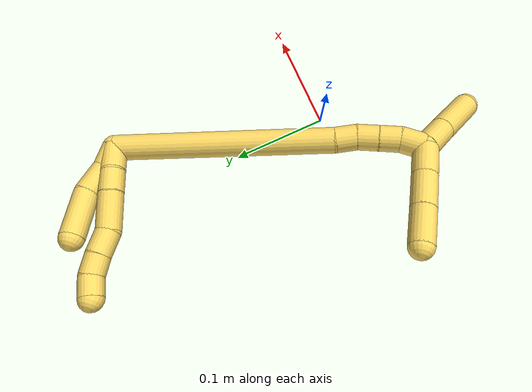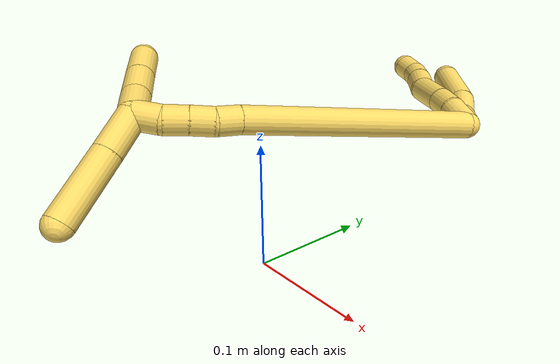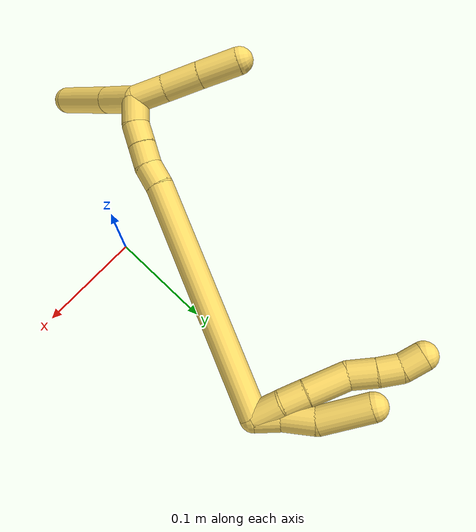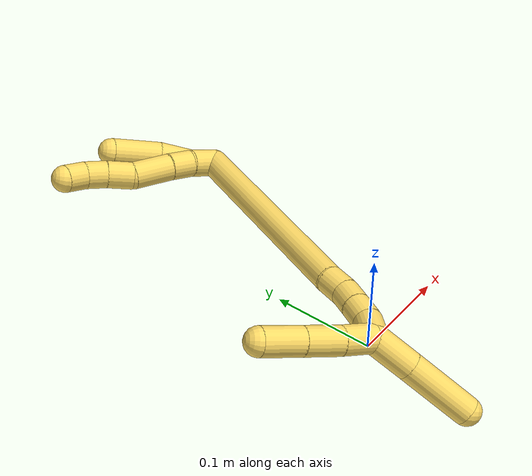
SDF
<sdf version="1.7">
 <world name="default">
  <model name="5">
   <static>0</static>
   <link name="5">
    <collision name="collision-cylinder-e_1_2_8">
     <pose>-0.002545 -0.002057 -0.012961 2.98419 -0.191588 -1.76705</pose>
     <geometry><cylinder><radius>0.0125</radius><length>0.026735</length></cylinder></geometry>
     <surface>
      <friction><ode><mu>1.16</mu><mu2>1.16</mu2><slip1>0</slip1><slip2>0</slip2></ode></friction>
      <contact><ode><kp>1e+06</kp><kd>1</kd><max_vel>0</max_vel><min_depth>0.001</min_depth></ode></contact>
     </surface>
    </collision>
    <visual name="visual-cylinder-e_1_2_8">
     <pose>-0.002545 -0.002057 -0.012961 2.98419 -0.191588 -1.76705</pose>
     <geometry><cylinder><radius>0.0125</radius><length>0.026735</length></cylinder></geometry>
     <material><ambient>1 0.858824 0.4 1</ambient></material>
    </visual>
    <collision name="collision-cylinder-e_2_8_9">
     <pose>-0.005736 -0.007066 -0.036379 2.86645 -0.059331 -0.422286</pose>
     <geometry><cylinder><radius>0.0125</radius><length>0.021771</length></cylinder></geometry>
     <surface>
      <friction><ode><mu>1.16</mu><mu2>1.16</mu2><slip1>0</slip1><slip2>0</slip2></ode></friction>
      <contact><ode><kp>1e+06</kp><kd>1</kd><max_vel>0</max_vel><min_depth>0.001</min_depth></ode></contact>
     </surface>
    </collision>
    <visual name="visual-cylinder-e_2_8_9">
     <pose>-0.005736 -0.007066 -0.036379 2.86645 -0.059331 -0.422286</pose>
     <geometry><cylinder><radius>0.0125</radius><length>0.021771</length></cylinder></geometry>
     <material><ambient>1 0.858824 0.4 1</ambient></material>
    </visual>
    <collision name="collision-cylinder-e_3_9_10">
     <pose>-0.006531 -0.016029 -0.064408 2.81203 -0.008026 -0.048256</pose>
     <geometry><cylinder><radius>0.0125</radius><length>0.037142</length></cylinder></geometry>
     <surface>
      <friction><ode><mu>1.16</mu><mu2>1.16</mu2><slip1>0</slip1><slip2>0</slip2></ode></friction>
      <contact><ode><kp>1e+06</kp><kd>1</kd><max_vel>0</max_vel><min_depth>0.001</min_depth></ode></contact>
     </surface>
    </collision>
    <visual name="visual-cylinder-e_3_9_10">
     <pose>-0.006531 -0.016029 -0.064408 2.81203 -0.008026 -0.048256</pose>
     <geometry><cylinder><radius>0.0125</radius><length>0.037142</length></cylinder></geometry>
     <material><ambient>1 0.858824 0.4 1</ambient></material>
    </visual>
    <collision name="collision-cylinder-e_4_10_11">
     <pose>-0.004852 -0.022424 -0.093918 3.10929 0.151855 2.7232</pose>
     <geometry><cylinder><radius>0.0125</radius><length>0.024169</length></cylinder></geometry>
     <surface>
      <friction><ode><mu>1.16</mu><mu2>1.16</mu2><slip1>0</slip1><slip2>0</slip2></ode></friction>
      <contact><ode><kp>1e+06</kp><kd>1</kd><max_vel>0</max_vel><min_depth>0.001</min_depth></ode></contact>
     </surface>
    </collision>
    <visual name="visual-cylinder-e_4_10_11">
     <pose>-0.004852 -0.022424 -0.093918 3.10929 0.151855 2.7232</pose>
     <geometry><cylinder><radius>0.0125</radius><length>0.024169</length></cylinder></geometry>
     <material><ambient>1 0.858824 0.4 1</ambient></material>
    </visual>
    <collision name="collision-cylinder-e_5_11_12">
     <pose>-0.001755 -0.024178 -0.115688 3.00335 0.127133 1.4869</pose>
     <geometry><cylinder><radius>0.0125</radius><length>0.020012</length></cylinder></geometry>
     <surface>
      <friction><ode><mu>1.16</mu><mu2>1.16</mu2><slip1>0</slip1><slip2>0</slip2></ode></friction>
      <contact><ode><kp>1e+06</kp><kd>1</kd><max_vel>0</max_vel><min_depth>0.001</min_depth></ode></contact>
     </surface>
    </collision>
    <visual name="visual-cylinder-e_5_11_12">
     <pose>-0.001755 -0.024178 -0.115688 3.00335 0.127133 1.4869</pose>
     <geometry><cylinder><radius>0.0125</radius><length>0.020012</length></cylinder></geometry>
     <material><ambient>1 0.858824 0.4 1</ambient></material>
    </visual>
    <collision name="collision-cylinder-e_6_12_6">
     <pose>-0.002194 -0.028372 -0.135048 2.85322 -0.170128 -1.06204</pose>
     <geometry><cylinder><radius>0.0125</radius><length>0.020171</length></cylinder></geometry>
     <surface>
      <friction><ode><mu>1.16</mu><mu2>1.16</mu2><slip1>0</slip1><slip2>0</slip2></ode></friction>
      <contact><ode><kp>1e+06</kp><kd>1</kd><max_vel>0</max_vel><min_depth>0.001</min_depth></ode></contact>
     </surface>
    </collision>
    <visual name="visual-cylinder-e_6_12_6">
     <pose>-0.002194 -0.028372 -0.135048 2.85322 -0.170128 -1.06204</pose>
     <geometry><cylinder><radius>0.0125</radius><length>0.020171</length></cylinder></geometry>
     <material><ambient>1 0.858824 0.4 1</ambient></material>
    </visual>
    <collision name="collision-cylinder-e_1_2_13">
     <pose>0.002889 -0.000911 -0.01117 3.06025 0.252295 2.52059</pose>
     <geometry><cylinder><radius>0.0125</radius><length>0.023147</length></cylinder></geometry>
     <surface>
      <friction><ode><mu>1.16</mu><mu2>1.16</mu2><slip1>0</slip1><slip2>0</slip2></ode></friction>
      <contact><ode><kp>1e+06</kp><kd>1</kd><max_vel>0</max_vel><min_depth>0.001</min_depth></ode></contact>
     </surface>
    </collision>
    <visual name="visual-cylinder-e_1_2_13">
     <pose>0.002889 -0.000911 -0.01117 3.06025 0.252295 2.52059</pose>
     <geometry><cylinder><radius>0.0125</radius><length>0.023147</length></cylinder></geometry>
     <material><ambient>1 0.858824 0.4 1</ambient></material>
    </visual>
    <collision name="collision-cylinder-e_2_13_14">
     <pose>0.009393 0.000545 -0.036643 -2.97762 0.244361 -1.96208</pose>
     <geometry><cylinder><radius>0.0125</radius><length>0.029882</length></cylinder></geometry>
     <surface>
      <friction><ode><mu>1.16</mu><mu2>1.16</mu2><slip1>0</slip1><slip2>0</slip2></ode></friction>
      <contact><ode><kp>1e+06</kp><kd>1</kd><max_vel>0</max_vel><min_depth>0.001</min_depth></ode></contact>
     </surface>
    </collision>
    <visual name="visual-cylinder-e_2_13_14">
     <pose>0.009393 0.000545 -0.036643 -2.97762 0.244361 -1.96208</pose>
     <geometry><cylinder><radius>0.0125</radius><length>0.029882</length></cylinder></geometry>
     <material><ambient>1 0.858824 0.4 1</ambient></material>
    </visual>
    <collision name="collision-cylinder-e_3_14_5">
     <pose>0.012197 0.001847 -0.074393 3.09621 -0.034536 -1.30096</pose>
     <geometry><cylinder><radius>0.0125</radius><length>0.04697</length></cylinder></geometry>
     <surface>
      <friction><ode><mu>1.16</mu><mu2>1.16</mu2><slip1>0</slip1><slip2>0</slip2></ode></friction>
      <contact><ode><kp>1e+06</kp><kd>1</kd><max_vel>0</max_vel><min_depth>0.001</min_depth></ode></contact>
     </surface>
    </collision>
    <visual name="visual-cylinder-e_3_14_5">
     <pose>0.012197 0.001847 -0.074393 3.09621 -0.034536 -1.30096</pose>
     <geometry><cylinder><radius>0.0125</radius><length>0.04697</length></cylinder></geometry>
     <material><ambient>1 0.858824 0.4 1</ambient></material>
    </visual>
    <collision name="collision-cylinder-e_1_2_15">
     <pose>-0.088368 -0.057511 0.019217 1.24832 -0.9694 -0.725002</pose>
     <geometry><cylinder><radius>0.0125</radius><length>0.214343</length></cylinder></geometry>
     <surface>
      <friction><ode><mu>1.16</mu><mu2>1.16</mu2><slip1>0</slip1><slip2>0</slip2></ode></friction>
      <contact><ode><kp>1e+06</kp><kd>1</kd><max_vel>0</max_vel><min_depth>0.001</min_depth></ode></contact>
     </surface>
    </collision>
    <visual name="visual-cylinder-e_1_2_15">
     <pose>-0.088368 -0.057511 0.019217 1.24832 -0.9694 -0.725002</pose>
     <geometry><cylinder><radius>0.0125</radius><length>0.214343</length></cylinder></geometry>
     <material><ambient>1 0.858824 0.4 1</ambient></material>
    </visual>
    <collision name="collision-cylinder-e_2_15_16">
     <pose>-0.185034 -0.12056 0.041723 1.03479 -0.910775 -0.54361</pose>
     <geometry><cylinder><radius>0.0125</radius><length>0.021009</length></cylinder></geometry>
     <surface>
      <friction><ode><mu>1.16</mu><mu2>1.16</mu2><slip1>0</slip1><slip2>0</slip2></ode></friction>
      <contact><ode><kp>1e+06</kp><kd>1</kd><max_vel>0</max_vel><min_depth>0.001</min_depth></ode></contact>
     </surface>
    </collision>
    <visual name="visual-cylinder-e_2_15_16">
     <pose>-0.185034 -0.12056 0.041723 1.03479 -0.910775 -0.54361</pose>
     <geometry><cylinder><radius>0.0125</radius><length>0.021009</length></cylinder></geometry>
     <material><ambient>1 0.858824 0.4 1</ambient></material>
    </visual>
    <collision name="collision-cylinder-e_3_16_17">
     <pose>-0.20169 -0.131902 0.045965 1.40816 -0.957478 -0.830337</pose>
     <geometry><cylinder><radius>0.0125</radius><length>0.020439</length></cylinder></geometry>
     <surface>
      <friction><ode><mu>1.16</mu><mu2>1.16</mu2><slip1>0</slip1><slip2>0</slip2></ode></friction>
      <contact><ode><kp>1e+06</kp><kd>1</kd><max_vel>0</max_vel><min_depth>0.001</min_depth></ode></contact>
     </surface>
    </collision>
    <visual name="visual-cylinder-e_3_16_17">
     <pose>-0.20169 -0.131902 0.045965 1.40816 -0.957478 -0.830337</pose>
     <geometry><cylinder><radius>0.0125</radius><length>0.020439</length></cylinder></geometry>
     <material><ambient>1 0.858824 0.4 1</ambient></material>
    </visual>
    <collision name="collision-cylinder-e_4_17_18">
     <pose>-0.218281 -0.143805 0.048028 1.39068 -0.925556 -0.788906</pose>
     <geometry><cylinder><radius>0.0125</radius><length>0.020613</length></cylinder></geometry>
     <surface>
      <friction><ode><mu>1.16</mu><mu2>1.16</mu2><slip1>0</slip1><slip2>0</slip2></ode></friction>
      <contact><ode><kp>1e+06</kp><kd>1</kd><max_vel>0</max_vel><min_depth>0.001</min_depth></ode></contact>
     </surface>
    </collision>
    <visual name="visual-cylinder-e_4_17_18">
     <pose>-0.218281 -0.143805 0.048028 1.39068 -0.925556 -0.788906</pose>
     <geometry><cylinder><radius>0.0125</radius><length>0.020613</length></cylinder></geometry>
     <material><ambient>1 0.858824 0.4 1</ambient></material>
    </visual>
    <collision name="collision-cylinder-e_5_18_1">
     <pose>-0.23585 -0.156839 0.047149 1.8501 -0.912702 -1.15486</pose>
     <geometry><cylinder><radius>0.0125</radius><length>0.023595</length></cylinder></geometry>
     <surface>
      <friction><ode><mu>1.16</mu><mu2>1.16</mu2><slip1>0</slip1><slip2>0</slip2></ode></friction>
      <contact><ode><kp>1e+06</kp><kd>1</kd><max_vel>0</max_vel><min_depth>0.001</min_depth></ode></contact>
     </surface>
    </collision>
    <visual name="visual-cylinder-e_5_18_1">
     <pose>-0.23585 -0.156839 0.047149 1.8501 -0.912702 -1.15486</pose>
     <geometry><cylinder><radius>0.0125</radius><length>0.023595</length></cylinder></geometry>
     <material><ambient>1 0.858824 0.4 1</ambient></material>
    </visual>
    <collision name="collision-cylinder-e_1_1_19">
     <pose>-0.245351 -0.165586 0.030596 3.01784 -0.011437 -0.184084</pose>
     <geometry><cylinder><radius>0.0125</radius><length>0.029353</length></cylinder></geometry>
     <surface>
      <friction><ode><mu>1.16</mu><mu2>1.16</mu2><slip1>0</slip1><slip2>0</slip2></ode></friction>
      <contact><ode><kp>1e+06</kp><kd>1</kd><max_vel>0</max_vel><min_depth>0.001</min_depth></ode></contact>
     </surface>
    </collision>
    <visual name="visual-cylinder-e_1_1_19">
     <pose>-0.245351 -0.165586 0.030596 3.01784 -0.011437 -0.184084</pose>
     <geometry><cylinder><radius>0.0125</radius><length>0.029353</length></cylinder></geometry>
     <material><ambient>1 0.858824 0.4 1</ambient></material>
    </visual>
    <collision name="collision-cylinder-e_2_19_20">
     <pose>-0.246047 -0.168587 -0.000877 3.07138 -0.031132 -0.834411</pose>
     <geometry><cylinder><radius>0.0125</radius><length>0.033919</length></cylinder></geometry>
     <surface>
      <friction><ode><mu>1.16</mu><mu2>1.16</mu2><slip1>0</slip1><slip2>0</slip2></ode></friction>
      <contact><ode><kp>1e+06</kp><kd>1</kd><max_vel>0</max_vel><min_depth>0.001</min_depth></ode></contact>
     </surface>
    </collision>
    <visual name="visual-cylinder-e_2_19_20">
     <pose>-0.246047 -0.168587 -0.000877 3.07138 -0.031132 -0.834411</pose>
     <geometry><cylinder><radius>0.0125</radius><length>0.033919</length></cylinder></geometry>
     <material><ambient>1 0.858824 0.4 1</ambient></material>
    </visual>
    <collision name="collision-cylinder-e_3_20_4">
     <pose>-0.246924 -0.170998 -0.036106 3.075 -0.019016 -0.556131</pose>
     <geometry><cylinder><radius>0.0125</radius><length>0.036728</length></cylinder></geometry>
     <surface>
      <friction><ode><mu>1.16</mu><mu2>1.16</mu2><slip1>0</slip1><slip2>0</slip2></ode></friction>
      <contact><ode><kp>1e+06</kp><kd>1</kd><max_vel>0</max_vel><min_depth>0.001</min_depth></ode></contact>
     </surface>
    </collision>
    <visual name="visual-cylinder-e_3_20_4">
     <pose>-0.246924 -0.170998 -0.036106 3.075 -0.019016 -0.556131</pose>
     <geometry><cylinder><radius>0.0125</radius><length>0.036728</length></cylinder></geometry>
     <material><ambient>1 0.858824 0.4 1</ambient></material>
    </visual>
    <collision name="collision-cylinder-e_1_1_21">
     <pose>-0.2464 -0.173821 0.061081 0.562898 -0.064528 -0.018663</pose>
     <geometry><cylinder><radius>0.0125</radius><length>0.03773</length></cylinder></geometry>
     <surface>
      <friction><ode><mu>1.16</mu><mu2>1.16</mu2><slip1>0</slip1><slip2>0</slip2></ode></friction>
      <contact><ode><kp>1e+06</kp><kd>1</kd><max_vel>0</max_vel><min_depth>0.001</min_depth></ode></contact>
     </surface>
    </collision>
    <visual name="visual-cylinder-e_1_1_21">
     <pose>-0.2464 -0.173821 0.061081 0.562898 -0.064528 -0.018663</pose>
     <geometry><cylinder><radius>0.0125</radius><length>0.03773</length></cylinder></geometry>
     <material><ambient>1 0.858824 0.4 1</ambient></material>
    </visual>
    <collision name="collision-cylinder-e_2_21_3">
     <pose>-0.249957 -0.200677 0.103105 0.572131 -0.075255 -0.022145</pose>
     <geometry><cylinder><radius>0.0125</radius><length>0.06227</length></cylinder></geometry>
     <surface>
      <friction><ode><mu>1.16</mu><mu2>1.16</mu2><slip1>0</slip1><slip2>0</slip2></ode></friction>
      <contact><ode><kp>1e+06</kp><kd>1</kd><max_vel>0</max_vel><min_depth>0.001</min_depth></ode></contact>
     </surface>
    </collision>
    <visual name="visual-cylinder-e_2_21_3">
     <pose>-0.249957 -0.200677 0.103105 0.572131 -0.075255 -0.022145</pose>
     <geometry><cylinder><radius>0.0125</radius><length>0.06227</length></cylinder></geometry>
     <material><ambient>1 0.858824 0.4 1</ambient></material>
    </visual>
    <collision name="collision-sphere-3">
     <pose>-0.252298 -0.217486 0.129207 0 -0 0</pose>
     <geometry><sphere><radius>0.0125</radius></sphere></geometry>
     <surface>
      <friction><ode><mu>1.16</mu><mu2>1.16</mu2><slip1>0</slip1><slip2>0</slip2></ode></friction>
      <contact><ode><kp>1e+06</kp><kd>1</kd><max_vel>0</max_vel><min_depth>0.001</min_depth></ode></contact>
     </surface>
    </collision>
    <visual name="visual-sphere-3">
     <pose>-0.252298 -0.217486 0.129207 0 -0 0</pose>
     <geometry><sphere><radius>0.0125</radius></sphere></geometry>
     <material><ambient>1 0.858824 0.4 1</ambient></material>
    </visual>
    <collision name="collision-sphere-21">
     <pose>-0.247616 -0.183867 0.077002 0 -0 0</pose>
     <geometry><sphere><radius>0.0125</radius></sphere></geometry>
     <surface>
      <friction><ode><mu>1.16</mu><mu2>1.16</mu2><slip1>0</slip1><slip2>0</slip2></ode></friction>
      <contact><ode><kp>1e+06</kp><kd>1</kd><max_vel>0</max_vel><min_depth>0.001</min_depth></ode></contact>
     </surface>
    </collision>
    <visual name="visual-sphere-21">
     <pose>-0.247616 -0.183867 0.077002 0 -0 0</pose>
     <geometry><sphere><radius>0.0125</radius></sphere></geometry>
     <material><ambient>1 0.858824 0.4 1</ambient></material>
    </visual>
    <collision name="collision-sphere-4">
     <pose>-0.247273 -0.17222 -0.054426 0 -0 0</pose>
     <geometry><sphere><radius>0.0125</radius></sphere></geometry>
     <surface>
      <friction><ode><mu>1.16</mu><mu2>1.16</mu2><slip1>0</slip1><slip2>0</slip2></ode></friction>
      <contact><ode><kp>1e+06</kp><kd>1</kd><max_vel>0</max_vel><min_depth>0.001</min_depth></ode></contact>
     </surface>
    </collision>
    <visual name="visual-sphere-4">
     <pose>-0.247273 -0.17222 -0.054426 0 -0 0</pose>
     <geometry><sphere><radius>0.0125</radius></sphere></geometry>
     <material><ambient>1 0.858824 0.4 1</ambient></material>
    </visual>
    <collision name="collision-sphere-20">
     <pose>-0.246575 -0.169776 -0.017786 0 -0 0</pose>
     <geometry><sphere><radius>0.0125</radius></sphere></geometry>
     <surface>
      <friction><ode><mu>1.16</mu><mu2>1.16</mu2><slip1>0</slip1><slip2>0</slip2></ode></friction>
      <contact><ode><kp>1e+06</kp><kd>1</kd><max_vel>0</max_vel><min_depth>0.001</min_depth></ode></contact>
     </surface>
    </collision>
    <visual name="visual-sphere-20">
     <pose>-0.246575 -0.169776 -0.017786 0 -0 0</pose>
     <geometry><sphere><radius>0.0125</radius></sphere></geometry>
     <material><ambient>1 0.858824 0.4 1</ambient></material>
    </visual>
    <collision name="collision-sphere-12">
     <pose>-0.000486 -0.025545 -0.125518 0 -0 0</pose>
     <geometry><sphere><radius>0.0125</radius></sphere></geometry>
     <surface>
      <friction><ode><mu>1.16</mu><mu2>1.16</mu2><slip1>0</slip1><slip2>0</slip2></ode></friction>
      <contact><ode><kp>1e+06</kp><kd>1</kd><max_vel>0</max_vel><min_depth>0.001</min_depth></ode></contact>
     </surface>
    </collision>
    <visual name="visual-sphere-12">
     <pose>-0.000486 -0.025545 -0.125518 0 -0 0</pose>
     <geometry><sphere><radius>0.0125</radius></sphere></geometry>
     <material><ambient>1 0.858824 0.4 1</ambient></material>
    </visual>
    <collision name="collision-sphere-11">
     <pose>-0.003024 -0.02281 -0.105857 0 -0 0</pose>
     <geometry><sphere><radius>0.0125</radius></sphere></geometry>
     <surface>
      <friction><ode><mu>1.16</mu><mu2>1.16</mu2><slip1>0</slip1><slip2>0</slip2></ode></friction>
      <contact><ode><kp>1e+06</kp><kd>1</kd><max_vel>0</max_vel><min_depth>0.001</min_depth></ode></contact>
     </surface>
    </collision>
    <visual name="visual-sphere-11">
     <pose>-0.003024 -0.02281 -0.105857 0 -0 0</pose>
     <geometry><sphere><radius>0.0125</radius></sphere></geometry>
     <material><ambient>1 0.858824 0.4 1</ambient></material>
    </visual>
    <collision name="collision-sphere-10">
     <pose>-0.00668 -0.022038 -0.081979 0 -0 0</pose>
     <geometry><sphere><radius>0.0125</radius></sphere></geometry>
     <surface>
      <friction><ode><mu>1.16</mu><mu2>1.16</mu2><slip1>0</slip1><slip2>0</slip2></ode></friction>
      <contact><ode><kp>1e+06</kp><kd>1</kd><max_vel>0</max_vel><min_depth>0.001</min_depth></ode></contact>
     </surface>
    </collision>
    <visual name="visual-sphere-10">
     <pose>-0.00668 -0.022038 -0.081979 0 -0 0</pose>
     <geometry><sphere><radius>0.0125</radius></sphere></geometry>
     <material><ambient>1 0.858824 0.4 1</ambient></material>
    </visual>
    <collision name="collision-sphere-9">
     <pose>-0.006382 -0.010019 -0.046837 0 -0 0</pose>
     <geometry><sphere><radius>0.0125</radius></sphere></geometry>
     <surface>
      <friction><ode><mu>1.16</mu><mu2>1.16</mu2><slip1>0</slip1><slip2>0</slip2></ode></friction>
      <contact><ode><kp>1e+06</kp><kd>1</kd><max_vel>0</max_vel><min_depth>0.001</min_depth></ode></contact>
     </surface>
    </collision>
    <visual name="visual-sphere-9">
     <pose>-0.006382 -0.010019 -0.046837 0 -0 0</pose>
     <geometry><sphere><radius>0.0125</radius></sphere></geometry>
     <material><ambient>1 0.858824 0.4 1</ambient></material>
    </visual>
    <collision name="collision-sphere-2">
     <geometry><sphere><radius>0.0125</radius></sphere></geometry>
     <surface>
      <friction><ode><mu>1.16</mu><mu2>1.16</mu2><slip1>0</slip1><slip2>0</slip2></ode></friction>
      <contact><ode><kp>1e+06</kp><kd>1</kd><max_vel>0</max_vel><min_depth>0.001</min_depth></ode></contact>
     </surface>
    </collision>
    <visual name="visual-sphere-2">
     <geometry><sphere><radius>0.0125</radius></sphere></geometry>
     <material><ambient>1 0.858824 0.4 1</ambient></material>
    </visual>
    <collision name="collision-sphere-19">
     <pose>-0.245519 -0.167398 0.016032 0 -0 0</pose>
     <geometry><sphere><radius>0.0125</radius></sphere></geometry>
     <surface>
      <friction><ode><mu>1.16</mu><mu2>1.16</mu2><slip1>0</slip1><slip2>0</slip2></ode></friction>
      <contact><ode><kp>1e+06</kp><kd>1</kd><max_vel>0</max_vel><min_depth>0.001</min_depth></ode></contact>
     </surface>
    </collision>
    <visual name="visual-sphere-19">
     <pose>-0.245519 -0.167398 0.016032 0 -0 0</pose>
     <geometry><sphere><radius>0.0125</radius></sphere></geometry>
     <material><ambient>1 0.858824 0.4 1</ambient></material>
    </visual>
    <collision name="collision-sphere-8">
     <pose>-0.005091 -0.004114 -0.025922 0 -0 0</pose>
     <geometry><sphere><radius>0.0125</radius></sphere></geometry>
     <surface>
      <friction><ode><mu>1.16</mu><mu2>1.16</mu2><slip1>0</slip1><slip2>0</slip2></ode></friction>
      <contact><ode><kp>1e+06</kp><kd>1</kd><max_vel>0</max_vel><min_depth>0.001</min_depth></ode></contact>
     </surface>
    </collision>
    <visual name="visual-sphere-8">
     <pose>-0.005091 -0.004114 -0.025922 0 -0 0</pose>
     <geometry><sphere><radius>0.0125</radius></sphere></geometry>
     <material><ambient>1 0.858824 0.4 1</ambient></material>
    </visual>
    <collision name="collision-sphere-6">
     <pose>-0.003902 -0.031199 -0.144577 0 -0 0</pose>
     <geometry><sphere><radius>0.0125</radius></sphere></geometry>
     <surface>
      <friction><ode><mu>1.16</mu><mu2>1.16</mu2><slip1>0</slip1><slip2>0</slip2></ode></friction>
      <contact><ode><kp>1e+06</kp><kd>1</kd><max_vel>0</max_vel><min_depth>0.001</min_depth></ode></contact>
     </surface>
    </collision>
    <visual name="visual-sphere-6">
     <pose>-0.003902 -0.031199 -0.144577 0 -0 0</pose>
     <geometry><sphere><radius>0.0125</radius></sphere></geometry>
     <material><ambient>1 0.858824 0.4 1</ambient></material>
    </visual>
    <collision name="collision-sphere-13">
     <pose>0.005778 -0.001821 -0.02234 0 -0 0</pose>
     <geometry><sphere><radius>0.0125</radius></sphere></geometry>
     <surface>
      <friction><ode><mu>1.16</mu><mu2>1.16</mu2><slip1>0</slip1><slip2>0</slip2></ode></friction>
      <contact><ode><kp>1e+06</kp><kd>1</kd><max_vel>0</max_vel><min_depth>0.001</min_depth></ode></contact>
     </surface>
    </collision>
    <visual name="visual-sphere-13">
     <pose>0.005778 -0.001821 -0.02234 0 -0 0</pose>
     <geometry><sphere><radius>0.0125</radius></sphere></geometry>
     <material><ambient>1 0.858824 0.4 1</ambient></material>
    </visual>
    <collision name="collision-sphere-14">
     <pose>0.013008 0.002912 -0.050946 0 -0 0</pose>
     <geometry><sphere><radius>0.0125</radius></sphere></geometry>
     <surface>
      <friction><ode><mu>1.16</mu><mu2>1.16</mu2><slip1>0</slip1><slip2>0</slip2></ode></friction>
      <contact><ode><kp>1e+06</kp><kd>1</kd><max_vel>0</max_vel><min_depth>0.001</min_depth></ode></contact>
     </surface>
    </collision>
    <visual name="visual-sphere-14">
     <pose>0.013008 0.002912 -0.050946 0 -0 0</pose>
     <geometry><sphere><radius>0.0125</radius></sphere></geometry>
     <material><ambient>1 0.858824 0.4 1</ambient></material>
    </visual>
    <collision name="collision-sphere-5">
     <pose>0.011386 0.000782 -0.09784 0 -0 0</pose>
     <geometry><sphere><radius>0.0125</radius></sphere></geometry>
     <surface>
      <friction><ode><mu>1.16</mu><mu2>1.16</mu2><slip1>0</slip1><slip2>0</slip2></ode></friction>
      <contact><ode><kp>1e+06</kp><kd>1</kd><max_vel>0</max_vel><min_depth>0.001</min_depth></ode></contact>
     </surface>
    </collision>
    <visual name="visual-sphere-5">
     <pose>0.011386 0.000782 -0.09784 0 -0 0</pose>
     <geometry><sphere><radius>0.0125</radius></sphere></geometry>
     <material><ambient>1 0.858824 0.4 1</ambient></material>
    </visual>
    <collision name="collision-sphere-15">
     <pose>-0.176736 -0.115023 0.038434 0 -0 0</pose>
     <geometry><sphere><radius>0.0125</radius></sphere></geometry>
     <surface>
      <friction><ode><mu>1.16</mu><mu2>1.16</mu2><slip1>0</slip1><slip2>0</slip2></ode></friction>
      <contact><ode><kp>1e+06</kp><kd>1</kd><max_vel>0</max_vel><min_depth>0.001</min_depth></ode></contact>
     </surface>
    </collision>
    <visual name="visual-sphere-15">
     <pose>-0.176736 -0.115023 0.038434 0 -0 0</pose>
     <geometry><sphere><radius>0.0125</radius></sphere></geometry>
     <material><ambient>1 0.858824 0.4 1</ambient></material>
    </visual>
    <collision name="collision-sphere-16">
     <pose>-0.193333 -0.126098 0.045012 0 -0 0</pose>
     <geometry><sphere><radius>0.0125</radius></sphere></geometry>
     <surface>
      <friction><ode><mu>1.16</mu><mu2>1.16</mu2><slip1>0</slip1><slip2>0</slip2></ode></friction>
      <contact><ode><kp>1e+06</kp><kd>1</kd><max_vel>0</max_vel><min_depth>0.001</min_depth></ode></contact>
     </surface>
    </collision>
    <visual name="visual-sphere-16">
     <pose>-0.193333 -0.126098 0.045012 0 -0 0</pose>
     <geometry><sphere><radius>0.0125</radius></sphere></geometry>
     <material><ambient>1 0.858824 0.4 1</ambient></material>
    </visual>
    <collision name="collision-sphere-17">
     <pose>-0.210047 -0.137707 0.046917 0 -0 0</pose>
     <geometry><sphere><radius>0.0125</radius></sphere></geometry>
     <surface>
      <friction><ode><mu>1.16</mu><mu2>1.16</mu2><slip1>0</slip1><slip2>0</slip2></ode></friction>
      <contact><ode><kp>1e+06</kp><kd>1</kd><max_vel>0</max_vel><min_depth>0.001</min_depth></ode></contact>
     </surface>
    </collision>
    <visual name="visual-sphere-17">
     <pose>-0.210047 -0.137707 0.046917 0 -0 0</pose>
     <geometry><sphere><radius>0.0125</radius></sphere></geometry>
     <material><ambient>1 0.858824 0.4 1</ambient></material>
    </visual>
    <collision name="collision-sphere-18">
     <pose>-0.226516 -0.149903 0.049138 0 -0 0</pose>
     <geometry><sphere><radius>0.0125</radius></sphere></geometry>
     <surface>
      <friction><ode><mu>1.16</mu><mu2>1.16</mu2><slip1>0</slip1><slip2>0</slip2></ode></friction>
      <contact><ode><kp>1e+06</kp><kd>1</kd><max_vel>0</max_vel><min_depth>0.001</min_depth></ode></contact>
     </surface>
    </collision>
    <visual name="visual-sphere-18">
     <pose>-0.226516 -0.149903 0.049138 0 -0 0</pose>
     <geometry><sphere><radius>0.0125</radius></sphere></geometry>
     <material><ambient>1 0.858824 0.4 1</ambient></material>
    </visual>
    <collision name="collision-sphere-1">
     <pose>-0.245183 -0.163775 0.04516 0 -0 0</pose>
     <geometry><sphere><radius>0.0125</radius></sphere></geometry>
     <surface>
      <friction><ode><mu>1.16</mu><mu2>1.16</mu2><slip1>0</slip1><slip2>0</slip2></ode></friction>
      <contact><ode><kp>1e+06</kp><kd>1</kd><max_vel>0</max_vel><min_depth>0.001</min_depth></ode></contact>
     </surface>
    </collision>
    <visual name="visual-sphere-1">
     <pose>-0.245183 -0.163775 0.04516 0 -0 0</pose>
     <geometry><sphere><radius>0.0125</radius></sphere></geometry>
     <material><ambient>1 0.858824 0.4 1</ambient></material>
    </visual>
    <inertial>
     <pose>-0.11494 -0.083273 0.000823 0 -0 0</pose>
     <mass>0.75</mass>
     <inertia>
      <ixx>4.3e-05</ixx>
      <ixy>0</ixy>
      <ixz>0</ixz>
      <iyy>0.000283</iyy>
      <iyz>0</iyz>
      <izz>0.001143</izz>
     </inertia>
    </inertial>
   </link>
   <pose>0.040645 0.208965 0.084471 2.01435 0.704693 1.21892</pose>
  </model>
 </world>
</sdf>
